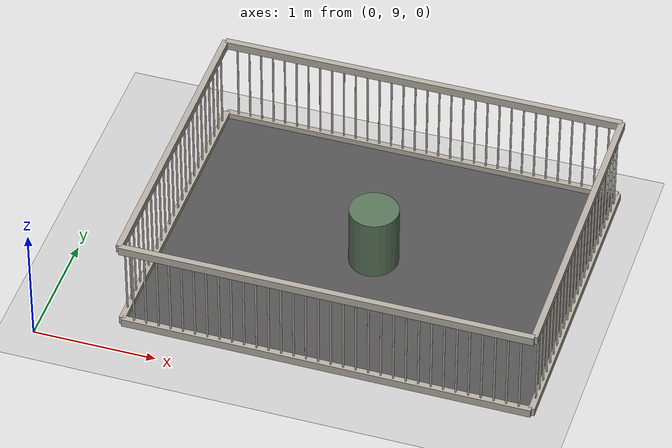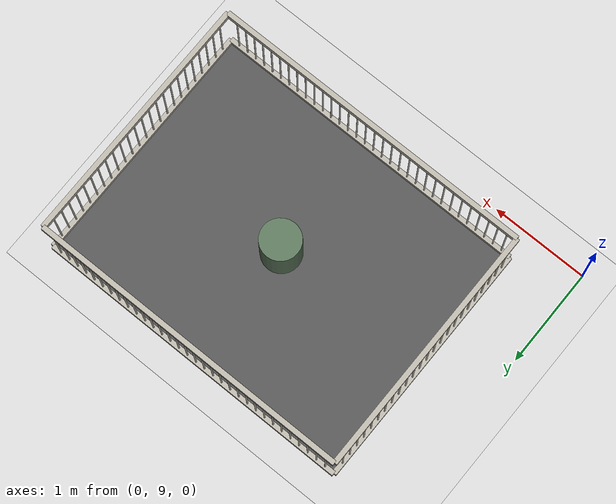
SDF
<sdf version="1.9">
 <world name="pig_pen_16units_world">
  <model name="ground_plane">
   <static>true</static>
   <link name="link">
    <collision name="collision">
     <geometry><plane><normal>0 0 1</normal><size>30 30</size></plane></geometry>
     <surface><friction><ode><mu>1.0</mu><mu2>1.0</mu2></ode></friction></surface>
    </collision>
    <visual name="visual">
     <geometry><plane><normal>0 0 1</normal><size>30 30</size></plane></geometry>
     <material>
      <ambient>0.8 0.8 0.8 1</ambient>
      <diffuse>0.8 0.8 0.8 1</diffuse>
      <specular>0.2 0.2 0.2 1</specular>
     </material>
    </visual>
   </link>
  </model>
  <model name="pen15">
   <pose>2.275 10.565 0 0 0 0</pose>
   <static>true</static>
   <link name="floor">
    <pose>0 0 0.01 0 0 0</pose>
    <collision name="collision"><geometry><box><size>3.30 2.55 0.02</size></box></geometry></collision>
    <visual name="visual">
     <geometry><box><size>3.30 2.55 0.02</size></box></geometry>
     <material>
      <ambient>0.25 0.25 0.25 1</ambient>
      <diffuse>0.32 0.32 0.32 1</diffuse>
      <specular>0.05 0.05 0.05 1</specular>
     </material>
    </visual>
   </link>
   <link name="left_wall">
    <pose>0 1.275 0.415 0 0 0</pose>
    <collision name="top_rail_col">
     <pose>0 0 0.38 0 0 0</pose>
     <geometry><box><size>3.30 0.05 0.07</size></box></geometry>
    </collision>
    <visual name="top_rail_vis">
     <pose>0 0 0.38 0 0 0</pose>
     <geometry><box><size>3.30 0.05 0.07</size></box></geometry>
     <material><ambient>0.70 0.68 0.64 1</ambient><diffuse>0.70 0.68 0.64 1</diffuse></material>
    </visual>
    <collision name="bottom_rail_col">
     <pose>0 0 -0.38 0 0 0</pose>
     <geometry><box><size>3.30 0.05 0.07</size></box></geometry>
    </collision>
    <visual name="bottom_rail_vis">
     <pose>0 0 -0.38 0 0 0</pose>
     <geometry><box><size>3.30 0.05 0.07</size></box></geometry>
     <material><ambient>0.70 0.68 0.64 1</ambient><diffuse>0.70 0.68 0.64 1</diffuse></material>
    </visual>
    <collision name="bar_01_col">
     <pose>-1.55 0 0 0 0 0</pose>
     <geometry><cylinder><radius>0.0075</radius><length>0.69</length></cylinder></geometry>
    </collision>
    <visual name="bar_01_vis">
     <pose>-1.55 0 0 0 0 0</pose>
     <geometry><cylinder><radius>0.0075</radius><length>0.69</length></cylinder></geometry>
     <material><ambient>0.70 0.68 0.64 1</ambient><diffuse>0.70 0.68 0.64 1</diffuse></material>
    </visual>
    <collision name="bar_02_col">
     <pose>-1.45 0 0 0 0 0</pose>
     <geometry><cylinder><radius>0.0075</radius><length>0.69</length></cylinder></geometry>
    </collision>
    <visual name="bar_02_vis">
     <pose>-1.45 0 0 0 0 0</pose>
     <geometry><cylinder><radius>0.0075</radius><length>0.69</length></cylinder></geometry>
     <material><ambient>0.70 0.68 0.64 1</ambient><diffuse>0.70 0.68 0.64 1</diffuse></material>
    </visual>
    <collision name="bar_03_col">
     <pose>-1.35 0 0 0 0 0</pose>
     <geometry><cylinder><radius>0.0075</radius><length>0.69</length></cylinder></geometry>
    </collision>
    <visual name="bar_03_vis">
     <pose>-1.35 0 0 0 0 0</pose>
     <geometry><cylinder><radius>0.0075</radius><length>0.69</length></cylinder></geometry>
     <material><ambient>0.70 0.68 0.64 1</ambient><diffuse>0.70 0.68 0.64 1</diffuse></material>
    </visual>
    <collision name="bar_04_col">
     <pose>-1.25 0 0 0 0 0</pose>
     <geometry><cylinder><radius>0.0075</radius><length>0.69</length></cylinder></geometry>
    </collision>
    <visual name="bar_04_vis">
     <pose>-1.25 0 0 0 0 0</pose>
     <geometry><cylinder><radius>0.0075</radius><length>0.69</length></cylinder></geometry>
     <material><ambient>0.70 0.68 0.64 1</ambient><diffuse>0.70 0.68 0.64 1</diffuse></material>
    </visual>
    <collision name="bar_05_col">
     <pose>-1.15 0 0 0 0 0</pose>
     <geometry><cylinder><radius>0.0075</radius><length>0.69</length></cylinder></geometry>
    </collision>
    <visual name="bar_05_vis">
     <pose>-1.15 0 0 0 0 0</pose>
     <geometry><cylinder><radius>0.0075</radius><length>0.69</length></cylinder></geometry>
     <material><ambient>0.70 0.68 0.64 1</ambient><diffuse>0.70 0.68 0.64 1</diffuse></material>
    </visual>
    <collision name="bar_06_col">
     <pose>-1.05 0 0 0 0 0</pose>
     <geometry><cylinder><radius>0.0075</radius><length>0.69</length></cylinder></geometry>
    </collision>
    <visual name="bar_06_vis">
     <pose>-1.05 0 0 0 0 0</pose>
     <geometry><cylinder><radius>0.0075</radius><length>0.69</length></cylinder></geometry>
     <material><ambient>0.70 0.68 0.64 1</ambient><diffuse>0.70 0.68 0.64 1</diffuse></material>
    </visual>
    <collision name="bar_07_col">
     <pose>-0.95 0 0 0 0 0</pose>
     <geometry><cylinder><radius>0.0075</radius><length>0.69</length></cylinder></geometry>
    </collision>
    <visual name="bar_07_vis">
     <pose>-0.95 0 0 0 0 0</pose>
     <geometry><cylinder><radius>0.0075</radius><length>0.69</length></cylinder></geometry>
     <material><ambient>0.70 0.68 0.64 1</ambient><diffuse>0.70 0.68 0.64 1</diffuse></material>
    </visual>
    <collision name="bar_08_col">
     <pose>-0.85 0 0 0 0 0</pose>
     <geometry><cylinder><radius>0.0075</radius><length>0.69</length></cylinder></geometry>
    </collision>
    <visual name="bar_08_vis">
     <pose>-0.85 0 0 0 0 0</pose>
     <geometry><cylinder><radius>0.0075</radius><length>0.69</length></cylinder></geometry>
     <material><ambient>0.70 0.68 0.64 1</ambient><diffuse>0.70 0.68 0.64 1</diffuse></material>
    </visual>
    <collision name="bar_09_col">
     <pose>-0.75 0 0 0 0 0</pose>
     <geometry><cylinder><radius>0.0075</radius><length>0.69</length></cylinder></geometry>
    </collision>
    <visual name="bar_09_vis">
     <pose>-0.75 0 0 0 0 0</pose>
     <geometry><cylinder><radius>0.0075</radius><length>0.69</length></cylinder></geometry>
     <material><ambient>0.70 0.68 0.64 1</ambient><diffuse>0.70 0.68 0.64 1</diffuse></material>
    </visual>
    <collision name="bar_10_col">
     <pose>-0.65 0 0 0 0 0</pose>
     <geometry><cylinder><radius>0.0075</radius><length>0.69</length></cylinder></geometry>
    </collision>
    <visual name="bar_10_vis">
     <pose>-0.65 0 0 0 0 0</pose>
     <geometry><cylinder><radius>0.0075</radius><length>0.69</length></cylinder></geometry>
     <material><ambient>0.70 0.68 0.64 1</ambient><diffuse>0.70 0.68 0.64 1</diffuse></material>
    </visual>
    <collision name="bar_11_col">
     <pose>-0.55 0 0 0 0 0</pose>
     <geometry><cylinder><radius>0.0075</radius><length>0.69</length></cylinder></geometry>
    </collision>
    <visual name="bar_11_vis">
     <pose>-0.55 0 0 0 0 0</pose>
     <geometry><cylinder><radius>0.0075</radius><length>0.69</length></cylinder></geometry>
     <material><ambient>0.70 0.68 0.64 1</ambient><diffuse>0.70 0.68 0.64 1</diffuse></material>
    </visual>
    <collision name="bar_12_col">
     <pose>-0.45 0 0 0 0 0</pose>
     <geometry><cylinder><radius>0.0075</radius><length>0.69</length></cylinder></geometry>
    </collision>
    <visual name="bar_12_vis">
     <pose>-0.45 0 0 0 0 0</pose>
     <geometry><cylinder><radius>0.0075</radius><length>0.69</length></cylinder></geometry>
     <material><ambient>0.70 0.68 0.64 1</ambient><diffuse>0.70 0.68 0.64 1</diffuse></material>
    </visual>
    <collision name="bar_13_col">
     <pose>-0.35 0 0 0 0 0</pose>
     <geometry><cylinder><radius>0.0075</radius><length>0.69</length></cylinder></geometry>
    </collision>
    <visual name="bar_13_vis">
     <pose>-0.35 0 0 0 0 0</pose>
     <geometry><cylinder><radius>0.0075</radius><length>0.69</length></cylinder></geometry>
     <material><ambient>0.70 0.68 0.64 1</ambient><diffuse>0.70 0.68 0.64 1</diffuse></material>
    </visual>
    <collision name="bar_14_col">
     <pose>-0.25 0 0 0 0 0</pose>
     <geometry><cylinder><radius>0.0075</radius><length>0.69</length></cylinder></geometry>
    </collision>
    <visual name="bar_14_vis">
     <pose>-0.25 0 0 0 0 0</pose>
     <geometry><cylinder><radius>0.0075</radius><length>0.69</length></cylinder></geometry>
     <material><ambient>0.70 0.68 0.64 1</ambient><diffuse>0.70 0.68 0.64 1</diffuse></material>
    </visual>
    <collision name="bar_15_col">
     <pose>-0.15 0 0 0 0 0</pose>
     <geometry><cylinder><radius>0.0075</radius><length>0.69</length></cylinder></geometry>
    </collision>
    <visual name="bar_15_vis">
     <pose>-0.15 0 0 0 0 0</pose>
     <geometry><cylinder><radius>0.0075</radius><length>0.69</length></cylinder></geometry>
     <material><ambient>0.70 0.68 0.64 1</ambient><diffuse>0.70 0.68 0.64 1</diffuse></material>
    </visual>
    <collision name="bar_16_col">
     <pose>-0.05 0 0 0 0 0</pose>
     <geometry><cylinder><radius>0.0075</radius><length>0.69</length></cylinder></geometry>
    </collision>
    <visual name="bar_16_vis">
     <pose>-0.05 0 0 0 0 0</pose>
     <geometry><cylinder><radius>0.0075</radius><length>0.69</length></cylinder></geometry>
     <material><ambient>0.70 0.68 0.64 1</ambient><diffuse>0.70 0.68 0.64 1</diffuse></material>
    </visual>
    <collision name="bar_17_col">
     <pose>0.05 0 0 0 0 0</pose>
     <geometry><cylinder><radius>0.0075</radius><length>0.69</length></cylinder></geometry>
    </collision>
    <visual name="bar_17_vis">
     <pose>0.05 0 0 0 0 0</pose>
     <geometry><cylinder><radius>0.0075</radius><length>0.69</length></cylinder></geometry>
     <material><ambient>0.70 0.68 0.64 1</ambient><diffuse>0.70 0.68 0.64 1</diffuse></material>
    </visual>
    <collision name="bar_18_col">
     <pose>0.15 0 0 0 0 0</pose>
     <geometry><cylinder><radius>0.0075</radius><length>0.69</length></cylinder></geometry>
    </collision>
    <visual name="bar_18_vis">
     <pose>0.15 0 0 0 0 0</pose>
     <geometry><cylinder><radius>0.0075</radius><length>0.69</length></cylinder></geometry>
     <material><ambient>0.70 0.68 0.64 1</ambient><diffuse>0.70 0.68 0.64 1</diffuse></material>
    </visual>
    <collision name="bar_19_col">
     <pose>0.25 0 0 0 0 0</pose>
     <geometry><cylinder><radius>0.0075</radius><length>0.69</length></cylinder></geometry>
    </collision>
    <visual name="bar_19_vis">
     <pose>0.25 0 0 0 0 0</pose>
     <geometry><cylinder><radius>0.0075</radius><length>0.69</length></cylinder></geometry>
     <material><ambient>0.70 0.68 0.64 1</ambient><diffuse>0.70 0.68 0.64 1</diffuse></material>
    </visual>
    <collision name="bar_20_col">
     <pose>0.35 0 0 0 0 0</pose>
     <geometry><cylinder><radius>0.0075</radius><length>0.69</length></cylinder></geometry>
    </collision>
    <visual name="bar_20_vis">
     <pose>0.35 0 0 0 0 0</pose>
     <geometry><cylinder><radius>0.0075</radius><length>0.69</length></cylinder></geometry>
     <material><ambient>0.70 0.68 0.64 1</ambient><diffuse>0.70 0.68 0.64 1</diffuse></material>
    </visual>
    <collision name="bar_21_col">
     <pose>0.45 0 0 0 0 0</pose>
     <geometry><cylinder><radius>0.0075</radius><length>0.69</length></cylinder></geometry>
    </collision>
    <visual name="bar_21_vis">
     <pose>0.45 0 0 0 0 0</pose>
     <geometry><cylinder><radius>0.0075</radius><length>0.69</length></cylinder></geometry>
     <material><ambient>0.70 0.68 0.64 1</ambient><diffuse>0.70 0.68 0.64 1</diffuse></material>
    </visual>
    <collision name="bar_22_col">
     <pose>0.55 0 0 0 0 0</pose>
     <geometry><cylinder><radius>0.0075</radius><length>0.69</length></cylinder></geometry>
    </collision>
    <visual name="bar_22_vis">
     <pose>0.55 0 0 0 0 0</pose>
     <geometry><cylinder><radius>0.0075</radius><length>0.69</length></cylinder></geometry>
     <material><ambient>0.70 0.68 0.64 1</ambient><diffuse>0.70 0.68 0.64 1</diffuse></material>
    </visual>
    <collision name="bar_23_col">
     <pose>0.65 0 0 0 0 0</pose>
     <geometry><cylinder><radius>0.0075</radius><length>0.69</length></cylinder></geometry>
    </collision>
    <visual name="bar_23_vis">
     <pose>0.65 0 0 0 0 0</pose>
     <geometry><cylinder><radius>0.0075</radius><length>0.69</length></cylinder></geometry>
     <material><ambient>0.70 0.68 0.64 1</ambient><diffuse>0.70 0.68 0.64 1</diffuse></material>
    </visual>
    <collision name="bar_24_col">
     <pose>0.75 0 0 0 0 0</pose>
     <geometry><cylinder><radius>0.0075</radius><length>0.69</length></cylinder></geometry>
    </collision>
    <visual name="bar_24_vis">
     <pose>0.75 0 0 0 0 0</pose>
     <geometry><cylinder><radius>0.0075</radius><length>0.69</length></cylinder></geometry>
     <material><ambient>0.70 0.68 0.64 1</ambient><diffuse>0.70 0.68 0.64 1</diffuse></material>
    </visual>
    <collision name="bar_25_col">
     <pose>0.85 0 0 0 0 0</pose>
     <geometry><cylinder><radius>0.0075</radius><length>0.69</length></cylinder></geometry>
    </collision>
    <visual name="bar_25_vis">
     <pose>0.85 0 0 0 0 0</pose>
     <geometry><cylinder><radius>0.0075</radius><length>0.69</length></cylinder></geometry>
     <material><ambient>0.70 0.68 0.64 1</ambient><diffuse>0.70 0.68 0.64 1</diffuse></material>
    </visual>
    <collision name="bar_26_col">
     <pose>0.95 0 0 0 0 0</pose>
     <geometry><cylinder><radius>0.0075</radius><length>0.69</length></cylinder></geometry>
    </collision>
    <visual name="bar_26_vis">
     <pose>0.95 0 0 0 0 0</pose>
     <geometry><cylinder><radius>0.0075</radius><length>0.69</length></cylinder></geometry>
     <material><ambient>0.70 0.68 0.64 1</ambient><diffuse>0.70 0.68 0.64 1</diffuse></material>
    </visual>
    <collision name="bar_27_col">
     <pose>1.05 0 0 0 0 0</pose>
     <geometry><cylinder><radius>0.0075</radius><length>0.69</length></cylinder></geometry>
    </collision>
    <visual name="bar_27_vis">
     <pose>1.05 0 0 0 0 0</pose>
     <geometry><cylinder><radius>0.0075</radius><length>0.69</length></cylinder></geometry>
     <material><ambient>0.70 0.68 0.64 1</ambient><diffuse>0.70 0.68 0.64 1</diffuse></material>
    </visual>
    <collision name="bar_28_col">
     <pose>1.15 0 0 0 0 0</pose>
     <geometry><cylinder><radius>0.0075</radius><length>0.69</length></cylinder></geometry>
    </collision>
    <visual name="bar_28_vis">
     <pose>1.15 0 0 0 0 0</pose>
     <geometry><cylinder><radius>0.0075</radius><length>0.69</length></cylinder></geometry>
     <material><ambient>0.70 0.68 0.64 1</ambient><diffuse>0.70 0.68 0.64 1</diffuse></material>
    </visual>
    <collision name="bar_29_col">
     <pose>1.25 0 0 0 0 0</pose>
     <geometry><cylinder><radius>0.0075</radius><length>0.69</length></cylinder></geometry>
    </collision>
    <visual name="bar_29_vis">
     <pose>1.25 0 0 0 0 0</pose>
     <geometry><cylinder><radius>0.0075</radius><length>0.69</length></cylinder></geometry>
     <material><ambient>0.70 0.68 0.64 1</ambient><diffuse>0.70 0.68 0.64 1</diffuse></material>
    </visual>
    <collision name="bar_30_col">
     <pose>1.35 0 0 0 0 0</pose>
     <geometry><cylinder><radius>0.0075</radius><length>0.69</length></cylinder></geometry>
    </collision>
    <visual name="bar_30_vis">
     <pose>1.35 0 0 0 0 0</pose>
     <geometry><cylinder><radius>0.0075</radius><length>0.69</length></cylinder></geometry>
     <material><ambient>0.70 0.68 0.64 1</ambient><diffuse>0.70 0.68 0.64 1</diffuse></material>
    </visual>
    <collision name="bar_31_col">
     <pose>1.45 0 0 0 0 0</pose>
     <geometry><cylinder><radius>0.0075</radius><length>0.69</length></cylinder></geometry>
    </collision>
    <visual name="bar_31_vis">
     <pose>1.45 0 0 0 0 0</pose>
     <geometry><cylinder><radius>0.0075</radius><length>0.69</length></cylinder></geometry>
     <material><ambient>0.70 0.68 0.64 1</ambient><diffuse>0.70 0.68 0.64 1</diffuse></material>
    </visual>
    <collision name="bar_32_col">
     <pose>1.55 0 0 0 0 0</pose>
     <geometry><cylinder><radius>0.0075</radius><length>0.69</length></cylinder></geometry>
    </collision>
    <visual name="bar_32_vis">
     <pose>1.55 0 0 0 0 0</pose>
     <geometry><cylinder><radius>0.0075</radius><length>0.69</length></cylinder></geometry>
     <material><ambient>0.70 0.68 0.64 1</ambient><diffuse>0.70 0.68 0.64 1</diffuse></material>
    </visual>
   </link>
   <link name="right_wall">
    <pose>0 -1.275 0.415 0 0 0</pose>
    <collision name="top_rail_col">
     <pose>0 0 0.38 0 0 0</pose>
     <geometry><box><size>3.30 0.05 0.07</size></box></geometry>
    </collision>
    <visual name="top_rail_vis">
     <pose>0 0 0.38 0 0 0</pose>
     <geometry><box><size>3.30 0.05 0.07</size></box></geometry>
     <material><ambient>0.70 0.68 0.64 1</ambient><diffuse>0.70 0.68 0.64 1</diffuse></material>
    </visual>
    <collision name="bottom_rail_col">
     <pose>0 0 -0.38 0 0 0</pose>
     <geometry><box><size>3.30 0.05 0.07</size></box></geometry>
    </collision>
    <visual name="bottom_rail_vis">
     <pose>0 0 -0.38 0 0 0</pose>
     <geometry><box><size>3.30 0.05 0.07</size></box></geometry>
     <material><ambient>0.70 0.68 0.64 1</ambient><diffuse>0.70 0.68 0.64 1</diffuse></material>
    </visual>
    <collision name="bar_01_col">
     <pose>-1.55 0 0 0 0 0</pose>
     <geometry><cylinder><radius>0.0075</radius><length>0.69</length></cylinder></geometry>
    </collision>
    <visual name="bar_01_vis">
     <pose>-1.55 0 0 0 0 0</pose>
     <geometry><cylinder><radius>0.0075</radius><length>0.69</length></cylinder></geometry>
     <material><ambient>0.70 0.68 0.64 1</ambient><diffuse>0.70 0.68 0.64 1</diffuse></material>
    </visual>
    <collision name="bar_02_col">
     <pose>-1.45 0 0 0 0 0</pose>
     <geometry><cylinder><radius>0.0075</radius><length>0.69</length></cylinder></geometry>
    </collision>
    <visual name="bar_02_vis">
     <pose>-1.45 0 0 0 0 0</pose>
     <geometry><cylinder><radius>0.0075</radius><length>0.69</length></cylinder></geometry>
     <material><ambient>0.70 0.68 0.64 1</ambient><diffuse>0.70 0.68 0.64 1</diffuse></material>
    </visual>
    <collision name="bar_03_col">
     <pose>-1.35 0 0 0 0 0</pose>
     <geometry><cylinder><radius>0.0075</radius><length>0.69</length></cylinder></geometry>
    </collision>
    <visual name="bar_03_vis">
     <pose>-1.35 0 0 0 0 0</pose>
     <geometry><cylinder><radius>0.0075</radius><length>0.69</length></cylinder></geometry>
     <material><ambient>0.70 0.68 0.64 1</ambient><diffuse>0.70 0.68 0.64 1</diffuse></material>
    </visual>
    <collision name="bar_04_col">
     <pose>-1.25 0 0 0 0 0</pose>
     <geometry><cylinder><radius>0.0075</radius><length>0.69</length></cylinder></geometry>
    </collision>
    <visual name="bar_04_vis">
     <pose>-1.25 0 0 0 0 0</pose>
     <geometry><cylinder><radius>0.0075</radius><length>0.69</length></cylinder></geometry>
     <material><ambient>0.70 0.68 0.64 1</ambient><diffuse>0.70 0.68 0.64 1</diffuse></material>
    </visual>
    <collision name="bar_05_col">
     <pose>-1.15 0 0 0 0 0</pose>
     <geometry><cylinder><radius>0.0075</radius><length>0.69</length></cylinder></geometry>
    </collision>
    <visual name="bar_05_vis">
     <pose>-1.15 0 0 0 0 0</pose>
     <geometry><cylinder><radius>0.0075</radius><length>0.69</length></cylinder></geometry>
     <material><ambient>0.70 0.68 0.64 1</ambient><diffuse>0.70 0.68 0.64 1</diffuse></material>
    </visual>
    <collision name="bar_06_col">
     <pose>-1.05 0 0 0 0 0</pose>
     <geometry><cylinder><radius>0.0075</radius><length>0.69</length></cylinder></geometry>
    </collision>
    <visual name="bar_06_vis">
     <pose>-1.05 0 0 0 0 0</pose>
     <geometry><cylinder><radius>0.0075</radius><length>0.69</length></cylinder></geometry>
     <material><ambient>0.70 0.68 0.64 1</ambient><diffuse>0.70 0.68 0.64 1</diffuse></material>
    </visual>
    <collision name="bar_07_col">
     <pose>-0.95 0 0 0 0 0</pose>
     <geometry><cylinder><radius>0.0075</radius><length>0.69</length></cylinder></geometry>
    </collision>
    <visual name="bar_07_vis">
     <pose>-0.95 0 0 0 0 0</pose>
     <geometry><cylinder><radius>0.0075</radius><length>0.69</length></cylinder></geometry>
     <material><ambient>0.70 0.68 0.64 1</ambient><diffuse>0.70 0.68 0.64 1</diffuse></material>
    </visual>
    <collision name="bar_08_col">
     <pose>-0.85 0 0 0 0 0</pose>
     <geometry><cylinder><radius>0.0075</radius><length>0.69</length></cylinder></geometry>
    </collision>
    <visual name="bar_08_vis">
     <pose>-0.85 0 0 0 0 0</pose>
     <geometry><cylinder><radius>0.0075</radius><length>0.69</length></cylinder></geometry>
     <material><ambient>0.70 0.68 0.64 1</ambient><diffuse>0.70 0.68 0.64 1</diffuse></material>
    </visual>
    <collision name="bar_09_col">
     <pose>-0.75 0 0 0 0 0</pose>
     <geometry><cylinder><radius>0.0075</radius><length>0.69</length></cylinder></geometry>
    </collision>
    <visual name="bar_09_vis">
     <pose>-0.75 0 0 0 0 0</pose>
     <geometry><cylinder><radius>0.0075</radius><length>0.69</length></cylinder></geometry>
     <material><ambient>0.70 0.68 0.64 1</ambient><diffuse>0.70 0.68 0.64 1</diffuse></material>
    </visual>
    <collision name="bar_10_col">
     <pose>-0.65 0 0 0 0 0</pose>
     <geometry><cylinder><radius>0.0075</radius><length>0.69</length></cylinder></geometry>
    </collision>
    <visual name="bar_10_vis">
     <pose>-0.65 0 0 0 0 0</pose>
     <geometry><cylinder><radius>0.0075</radius><length>0.69</length></cylinder></geometry>
     <material><ambient>0.70 0.68 0.64 1</ambient><diffuse>0.70 0.68 0.64 1</diffuse></material>
    </visual>
    <collision name="bar_11_col">
     <pose>-0.55 0 0 0 0 0</pose>
     <geometry><cylinder><radius>0.0075</radius><length>0.69</length></cylinder></geometry>
    </collision>
    <visual name="bar_11_vis">
     <pose>-0.55 0 0 0 0 0</pose>
     <geometry><cylinder><radius>0.0075</radius><length>0.69</length></cylinder></geometry>
     <material><ambient>0.70 0.68 0.64 1</ambient><diffuse>0.70 0.68 0.64 1</diffuse></material>
    </visual>
    <collision name="bar_12_col">
     <pose>-0.45 0 0 0 0 0</pose>
     <geometry><cylinder><radius>0.0075</radius><length>0.69</length></cylinder></geometry>
    </collision>
    <visual name="bar_12_vis">
     <pose>-0.45 0 0 0 0 0</pose>
     <geometry><cylinder><radius>0.0075</radius><length>0.69</length></cylinder></geometry>
     <material><ambient>0.70 0.68 0.64 1</ambient><diffuse>0.70 0.68 0.64 1</diffuse></material>
    </visual>
    <collision name="bar_13_col">
     <pose>-0.35 0 0 0 0 0</pose>
     <geometry><cylinder><radius>0.0075</radius><length>0.69</length></cylinder></geometry>
    </collision>
    <visual name="bar_13_vis">
     <pose>-0.35 0 0 0 0 0</pose>
     <geometry><cylinder><radius>0.0075</radius><length>0.69</length></cylinder></geometry>
     <material><ambient>0.70 0.68 0.64 1</ambient><diffuse>0.70 0.68 0.64 1</diffuse></material>
    </visual>
    <collision name="bar_14_col">
     <pose>-0.25 0 0 0 0 0</pose>
     <geometry><cylinder><radius>0.0075</radius><length>0.69</length></cylinder></geometry>
    </collision>
    <visual name="bar_14_vis">
     <pose>-0.25 0 0 0 0 0</pose>
     <geometry><cylinder><radius>0.0075</radius><length>0.69</length></cylinder></geometry>
     <material><ambient>0.70 0.68 0.64 1</ambient><diffuse>0.70 0.68 0.64 1</diffuse></material>
    </visual>
    <collision name="bar_15_col">
     <pose>-0.15 0 0 0 0 0</pose>
     <geometry><cylinder><radius>0.0075</radius><length>0.69</length></cylinder></geometry>
    </collision>
    <visual name="bar_15_vis">
     <pose>-0.15 0 0 0 0 0</pose>
     <geometry><cylinder><radius>0.0075</radius><length>0.69</length></cylinder></geometry>
     <material><ambient>0.70 0.68 0.64 1</ambient><diffuse>0.70 0.68 0.64 1</diffuse></material>
    </visual>
    <collision name="bar_16_col">
     <pose>-0.05 0 0 0 0 0</pose>
     <geometry><cylinder><radius>0.0075</radius><length>0.69</length></cylinder></geometry>
    </collision>
    <visual name="bar_16_vis">
     <pose>-0.05 0 0 0 0 0</pose>
     <geometry><cylinder><radius>0.0075</radius><length>0.69</length></cylinder></geometry>
     <material><ambient>0.70 0.68 0.64 1</ambient><diffuse>0.70 0.68 0.64 1</diffuse></material>
    </visual>
    <collision name="bar_17_col">
     <pose>0.05 0 0 0 0 0</pose>
     <geometry><cylinder><radius>0.0075</radius><length>0.69</length></cylinder></geometry>
    </collision>
    <visual name="bar_17_vis">
     <pose>0.05 0 0 0 0 0</pose>
     <geometry><cylinder><radius>0.0075</radius><length>0.69</length></cylinder></geometry>
     <material><ambient>0.70 0.68 0.64 1</ambient><diffuse>0.70 0.68 0.64 1</diffuse></material>
    </visual>
    <collision name="bar_18_col">
     <pose>0.15 0 0 0 0 0</pose>
     <geometry><cylinder><radius>0.0075</radius><length>0.69</length></cylinder></geometry>
    </collision>
    <visual name="bar_18_vis">
     <pose>0.15 0 0 0 0 0</pose>
     <geometry><cylinder><radius>0.0075</radius><length>0.69</length></cylinder></geometry>
     <material><ambient>0.70 0.68 0.64 1</ambient><diffuse>0.70 0.68 0.64 1</diffuse></material>
    </visual>
    <collision name="bar_19_col">
     <pose>0.25 0 0 0 0 0</pose>
     <geometry><cylinder><radius>0.0075</radius><length>0.69</length></cylinder></geometry>
    </collision>
    <visual name="bar_19_vis">
     <pose>0.25 0 0 0 0 0</pose>
     <geometry><cylinder><radius>0.0075</radius><length>0.69</length></cylinder></geometry>
     <material><ambient>0.70 0.68 0.64 1</ambient><diffuse>0.70 0.68 0.64 1</diffuse></material>
    </visual>
    <collision name="bar_20_col">
     <pose>0.35 0 0 0 0 0</pose>
     <geometry><cylinder><radius>0.0075</radius><length>0.69</length></cylinder></geometry>
    </collision>
    <visual name="bar_20_vis">
     <pose>0.35 0 0 0 0 0</pose>
     <geometry><cylinder><radius>0.0075</radius><length>0.69</length></cylinder></geometry>
     <material><ambient>0.70 0.68 0.64 1</ambient><diffuse>0.70 0.68 0.64 1</diffuse></material>
    </visual>
    <collision name="bar_21_col">
     <pose>0.45 0 0 0 0 0</pose>
     <geometry><cylinder><radius>0.0075</radius><length>0.69</length></cylinder></geometry>
    </collision>
    <visual name="bar_21_vis">
     <pose>0.45 0 0 0 0 0</pose>
     <geometry><cylinder><radius>0.0075</radius><length>0.69</length></cylinder></geometry>
     <material><ambient>0.70 0.68 0.64 1</ambient><diffuse>0.70 0.68 0.64 1</diffuse></material>
    </visual>
    <collision name="bar_22_col">
     <pose>0.55 0 0 0 0 0</pose>
     <geometry><cylinder><radius>0.0075</radius><length>0.69</length></cylinder></geometry>
    </collision>
    <visual name="bar_22_vis">
     <pose>0.55 0 0 0 0 0</pose>
     <geometry><cylinder><radius>0.0075</radius><length>0.69</length></cylinder></geometry>
     <material><ambient>0.70 0.68 0.64 1</ambient><diffuse>0.70 0.68 0.64 1</diffuse></material>
    </visual>
    <collision name="bar_23_col">
     <pose>0.65 0 0 0 0 0</pose>
     <geometry><cylinder><radius>0.0075</radius><length>0.69</length></cylinder></geometry>
    </collision>
    <visual name="bar_23_vis">
     <pose>0.65 0 0 0 0 0</pose>
     <geometry><cylinder><radius>0.0075</radius><length>0.69</length></cylinder></geometry>
     <material><ambient>0.70 0.68 0.64 1</ambient><diffuse>0.70 0.68 0.64 1</diffuse></material>
    </visual>
    <collision name="bar_24_col">
     <pose>0.75 0 0 0 0 0</pose>
     <geometry><cylinder><radius>0.0075</radius><length>0.69</length></cylinder></geometry>
    </collision>
    <visual name="bar_24_vis">
     <pose>0.75 0 0 0 0 0</pose>
     <geometry><cylinder><radius>0.0075</radius><length>0.69</length></cylinder></geometry>
     <material><ambient>0.70 0.68 0.64 1</ambient><diffuse>0.70 0.68 0.64 1</diffuse></material>
    </visual>
    <collision name="bar_25_col">
     <pose>0.85 0 0 0 0 0</pose>
     <geometry><cylinder><radius>0.0075</radius><length>0.69</length></cylinder></geometry>
    </collision>
    <visual name="bar_25_vis">
     <pose>0.85 0 0 0 0 0</pose>
     <geometry><cylinder><radius>0.0075</radius><length>0.69</length></cylinder></geometry>
     <material><ambient>0.70 0.68 0.64 1</ambient><diffuse>0.70 0.68 0.64 1</diffuse></material>
    </visual>
    <collision name="bar_26_col">
     <pose>0.95 0 0 0 0 0</pose>
     <geometry><cylinder><radius>0.0075</radius><length>0.69</length></cylinder></geometry>
    </collision>
    <visual name="bar_26_vis">
     <pose>0.95 0 0 0 0 0</pose>
     <geometry><cylinder><radius>0.0075</radius><length>0.69</length></cylinder></geometry>
     <material><ambient>0.70 0.68 0.64 1</ambient><diffuse>0.70 0.68 0.64 1</diffuse></material>
    </visual>
    <collision name="bar_27_col">
     <pose>1.05 0 0 0 0 0</pose>
     <geometry><cylinder><radius>0.0075</radius><length>0.69</length></cylinder></geometry>
    </collision>
    <visual name="bar_27_vis">
     <pose>1.05 0 0 0 0 0</pose>
     <geometry><cylinder><radius>0.0075</radius><length>0.69</length></cylinder></geometry>
     <material><ambient>0.70 0.68 0.64 1</ambient><diffuse>0.70 0.68 0.64 1</diffuse></material>
    </visual>
    <collision name="bar_28_col">
     <pose>1.15 0 0 0 0 0</pose>
     <geometry><cylinder><radius>0.0075</radius><length>0.69</length></cylinder></geometry>
    </collision>
    <visual name="bar_28_vis">
     <pose>1.15 0 0 0 0 0</pose>
     <geometry><cylinder><radius>0.0075</radius><length>0.69</length></cylinder></geometry>
     <material><ambient>0.70 0.68 0.64 1</ambient><diffuse>0.70 0.68 0.64 1</diffuse></material>
    </visual>
    <collision name="bar_29_col">
     <pose>1.25 0 0 0 0 0</pose>
     <geometry><cylinder><radius>0.0075</radius><length>0.69</length></cylinder></geometry>
    </collision>
    <visual name="bar_29_vis">
     <pose>1.25 0 0 0 0 0</pose>
     <geometry><cylinder><radius>0.0075</radius><length>0.69</length></cylinder></geometry>
     <material><ambient>0.70 0.68 0.64 1</ambient><diffuse>0.70 0.68 0.64 1</diffuse></material>
    </visual>
    <collision name="bar_30_col">
     <pose>1.35 0 0 0 0 0</pose>
     <geometry><cylinder><radius>0.0075</radius><length>0.69</length></cylinder></geometry>
    </collision>
    <visual name="bar_30_vis">
     <pose>1.35 0 0 0 0 0</pose>
     <geometry><cylinder><radius>0.0075</radius><length>0.69</length></cylinder></geometry>
     <material><ambient>0.70 0.68 0.64 1</ambient><diffuse>0.70 0.68 0.64 1</diffuse></material>
    </visual>
    <collision name="bar_31_col">
     <pose>1.45 0 0 0 0 0</pose>
     <geometry><cylinder><radius>0.0075</radius><length>0.69</length></cylinder></geometry>
    </collision>
    <visual name="bar_31_vis">
     <pose>1.45 0 0 0 0 0</pose>
     <geometry><cylinder><radius>0.0075</radius><length>0.69</length></cylinder></geometry>
     <material><ambient>0.70 0.68 0.64 1</ambient><diffuse>0.70 0.68 0.64 1</diffuse></material>
    </visual>
    <collision name="bar_32_col">
     <pose>1.55 0 0 0 0 0</pose>
     <geometry><cylinder><radius>0.0075</radius><length>0.69</length></cylinder></geometry>
    </collision>
    <visual name="bar_32_vis">
     <pose>1.55 0 0 0 0 0</pose>
     <geometry><cylinder><radius>0.0075</radius><length>0.69</length></cylinder></geometry>
     <material><ambient>0.70 0.68 0.64 1</ambient><diffuse>0.70 0.68 0.64 1</diffuse></material>
    </visual>
   </link>
   <link name="back_wall">
    <pose>1.65 0 0.415 0 0 0</pose>
    <collision name="top_rail_col">
     <pose>0 0 0.38 0 0 0</pose>
     <geometry><box><size>0.05 2.55 0.07</size></box></geometry>
    </collision>
    <visual name="top_rail_vis">
     <pose>0 0 0.38 0 0 0</pose>
     <geometry><box><size>0.05 2.55 0.07</size></box></geometry>
     <material><ambient>0.70 0.68 0.64 1</ambient><diffuse>0.70 0.68 0.64 1</diffuse></material>
    </visual>
    <collision name="bottom_rail_col">
     <pose>0 0 -0.38 0 0 0</pose>
     <geometry><box><size>0.05 2.55 0.07</size></box></geometry>
    </collision>
    <visual name="bottom_rail_vis">
     <pose>0 0 -0.38 0 0 0</pose>
     <geometry><box><size>0.05 2.55 0.07</size></box></geometry>
     <material><ambient>0.70 0.68 0.64 1</ambient><diffuse>0.70 0.68 0.64 1</diffuse></material>
    </visual>
    <collision name="bar_01_col">
     <pose>0 -1.15 0 0 0 0</pose>
     <geometry><cylinder><radius>0.0075</radius><length>0.69</length></cylinder></geometry>
    </collision>
    <visual name="bar_01_vis">
     <pose>0 -1.15 0 0 0 0</pose>
     <geometry><cylinder><radius>0.0075</radius><length>0.69</length></cylinder></geometry>
     <material><ambient>0.70 0.68 0.64 1</ambient><diffuse>0.70 0.68 0.64 1</diffuse></material>
    </visual>
    <collision name="bar_02_col">
     <pose>0 -1.05 0 0 0 0</pose>
     <geometry><cylinder><radius>0.0075</radius><length>0.69</length></cylinder></geometry>
    </collision>
    <visual name="bar_02_vis">
     <pose>0 -1.05 0 0 0 0</pose>
     <geometry><cylinder><radius>0.0075</radius><length>0.69</length></cylinder></geometry>
     <material><ambient>0.70 0.68 0.64 1</ambient><diffuse>0.70 0.68 0.64 1</diffuse></material>
    </visual>
    <collision name="bar_03_col">
     <pose>0 -0.95 0 0 0 0</pose>
     <geometry><cylinder><radius>0.0075</radius><length>0.69</length></cylinder></geometry>
    </collision>
    <visual name="bar_03_vis">
     <pose>0 -0.95 0 0 0 0</pose>
     <geometry><cylinder><radius>0.0075</radius><length>0.69</length></cylinder></geometry>
     <material><ambient>0.70 0.68 0.64 1</ambient><diffuse>0.70 0.68 0.64 1</diffuse></material>
    </visual>
    <collision name="bar_04_col">
     <pose>0 -0.85 0 0 0 0</pose>
     <geometry><cylinder><radius>0.0075</radius><length>0.69</length></cylinder></geometry>
    </collision>
    <visual name="bar_04_vis">
     <pose>0 -0.85 0 0 0 0</pose>
     <geometry><cylinder><radius>0.0075</radius><length>0.69</length></cylinder></geometry>
     <material><ambient>0.70 0.68 0.64 1</ambient><diffuse>0.70 0.68 0.64 1</diffuse></material>
    </visual>
    <collision name="bar_05_col">
     <pose>0 -0.75 0 0 0 0</pose>
     <geometry><cylinder><radius>0.0075</radius><length>0.69</length></cylinder></geometry>
    </collision>
    <visual name="bar_05_vis">
     <pose>0 -0.75 0 0 0 0</pose>
     <geometry><cylinder><radius>0.0075</radius><length>0.69</length></cylinder></geometry>
     <material><ambient>0.70 0.68 0.64 1</ambient><diffuse>0.70 0.68 0.64 1</diffuse></material>
    </visual>
    <collision name="bar_06_col">
     <pose>0 -0.65 0 0 0 0</pose>
     <geometry><cylinder><radius>0.0075</radius><length>0.69</length></cylinder></geometry>
    </collision>
    <visual name="bar_06_vis">
     <pose>0 -0.65 0 0 0 0</pose>
     <geometry><cylinder><radius>0.0075</radius><length>0.69</length></cylinder></geometry>
     <material><ambient>0.70 0.68 0.64 1</ambient><diffuse>0.70 0.68 0.64 1</diffuse></material>
    </visual>
    <collision name="bar_07_col">
     <pose>0 -0.55 0 0 0 0</pose>
     <geometry><cylinder><radius>0.0075</radius><length>0.69</length></cylinder></geometry>
    </collision>
    <visual name="bar_07_vis">
     <pose>0 -0.55 0 0 0 0</pose>
     <geometry><cylinder><radius>0.0075</radius><length>0.69</length></cylinder></geometry>
     <material><ambient>0.70 0.68 0.64 1</ambient><diffuse>0.70 0.68 0.64 1</diffuse></material>
    </visual>
    <collision name="bar_08_col">
     <pose>0 -0.45 0 0 0 0</pose>
     <geometry><cylinder><radius>0.0075</radius><length>0.69</length></cylinder></geometry>
    </collision>
    <visual name="bar_08_vis">
     <pose>0 -0.45 0 0 0 0</pose>
     <geometry><cylinder><radius>0.0075</radius><length>0.69</length></cylinder></geometry>
     <material><ambient>0.70 0.68 0.64 1</ambient><diffuse>0.70 0.68 0.64 1</diffuse></material>
    </visual>
    <collision name="bar_09_col">
     <pose>0 -0.35 0 0 0 0</pose>
     <geometry><cylinder><radius>0.0075</radius><length>0.69</length></cylinder></geometry>
    </collision>
    <visual name="bar_09_vis">
     <pose>0 -0.35 0 0 0 0</pose>
     <geometry><cylinder><radius>0.0075</radius><length>0.69</length></cylinder></geometry>
     <material><ambient>0.70 0.68 0.64 1</ambient><diffuse>0.70 0.68 0.64 1</diffuse></material>
    </visual>
    <collision name="bar_10_col">
     <pose>0 -0.25 0 0 0 0</pose>
     <geometry><cylinder><radius>0.0075</radius><length>0.69</length></cylinder></geometry>
    </collision>
    <visual name="bar_10_vis">
     <pose>0 -0.25 0 0 0 0</pose>
     <geometry><cylinder><radius>0.0075</radius><length>0.69</length></cylinder></geometry>
     <material><ambient>0.70 0.68 0.64 1</ambient><diffuse>0.70 0.68 0.64 1</diffuse></material>
    </visual>
    <collision name="bar_11_col">
     <pose>0 -0.15 0 0 0 0</pose>
     <geometry><cylinder><radius>0.0075</radius><length>0.69</length></cylinder></geometry>
    </collision>
    <visual name="bar_11_vis">
     <pose>0 -0.15 0 0 0 0</pose>
     <geometry><cylinder><radius>0.0075</radius><length>0.69</length></cylinder></geometry>
     <material><ambient>0.70 0.68 0.64 1</ambient><diffuse>0.70 0.68 0.64 1</diffuse></material>
    </visual>
    <collision name="bar_12_col">
     <pose>0 -0.05 0 0 0 0</pose>
     <geometry><cylinder><radius>0.0075</radius><length>0.69</length></cylinder></geometry>
    </collision>
    <visual name="bar_12_vis">
     <pose>0 -0.05 0 0 0 0</pose>
     <geometry><cylinder><radius>0.0075</radius><length>0.69</length></cylinder></geometry>
     <material><ambient>0.70 0.68 0.64 1</ambient><diffuse>0.70 0.68 0.64 1</diffuse></material>
    </visual>
    <collision name="bar_13_col">
     <pose>0 0.05 0 0 0 0</pose>
     <geometry><cylinder><radius>0.0075</radius><length>0.69</length></cylinder></geometry>
    </collision>
    <visual name="bar_13_vis">
     <pose>0 0.05 0 0 0 0</pose>
     <geometry><cylinder><radius>0.0075</radius><length>0.69</length></cylinder></geometry>
     <material><ambient>0.70 0.68 0.64 1</ambient><diffuse>0.70 0.68 0.64 1</diffuse></material>
    </visual>
    <collision name="bar_14_col">
     <pose>0 0.15 0 0 0 0</pose>
     <geometry><cylinder><radius>0.0075</radius><length>0.69</length></cylinder></geometry>
    </collision>
    <visual name="bar_14_vis">
     <pose>0 0.15 0 0 0 0</pose>
     <geometry><cylinder><radius>0.0075</radius><length>0.69</length></cylinder></geometry>
     <material><ambient>0.70 0.68 0.64 1</ambient><diffuse>0.70 0.68 0.64 1</diffuse></material>
    </visual>
    <collision name="bar_15_col">
     <pose>0 0.25 0 0 0 0</pose>
     <geometry><cylinder><radius>0.0075</radius><length>0.69</length></cylinder></geometry>
    </collision>
    <visual name="bar_15_vis">
     <pose>0 0.25 0 0 0 0</pose>
     <geometry><cylinder><radius>0.0075</radius><length>0.69</length></cylinder></geometry>
     <material><ambient>0.70 0.68 0.64 1</ambient><diffuse>0.70 0.68 0.64 1</diffuse></material>
    </visual>
    <collision name="bar_16_col">
     <pose>0 0.35 0 0 0 0</pose>
     <geometry><cylinder><radius>0.0075</radius><length>0.69</length></cylinder></geometry>
    </collision>
    <visual name="bar_16_vis">
     <pose>0 0.35 0 0 0 0</pose>
     <geometry><cylinder><radius>0.0075</radius><length>0.69</length></cylinder></geometry>
     <material><ambient>0.70 0.68 0.64 1</ambient><diffuse>0.70 0.68 0.64 1</diffuse></material>
    </visual>
    <collision name="bar_17_col">
     <pose>0 0.45 0 0 0 0</pose>
     <geometry><cylinder><radius>0.0075</radius><length>0.69</length></cylinder></geometry>
    </collision>
    <visual name="bar_17_vis">
     <pose>0 0.45 0 0 0 0</pose>
     <geometry><cylinder><radius>0.0075</radius><length>0.69</length></cylinder></geometry>
     <material><ambient>0.70 0.68 0.64 1</ambient><diffuse>0.70 0.68 0.64 1</diffuse></material>
    </visual>
    <collision name="bar_18_col">
     <pose>0 0.55 0 0 0 0</pose>
     <geometry><cylinder><radius>0.0075</radius><length>0.69</length></cylinder></geometry>
    </collision>
    <visual name="bar_18_vis">
     <pose>0 0.55 0 0 0 0</pose>
     <geometry><cylinder><radius>0.0075</radius><length>0.69</length></cylinder></geometry>
     <material><ambient>0.70 0.68 0.64 1</ambient><diffuse>0.70 0.68 0.64 1</diffuse></material>
    </visual>
    <collision name="bar_19_col">
     <pose>0 0.65 0 0 0 0</pose>
     <geometry><cylinder><radius>0.0075</radius><length>0.69</length></cylinder></geometry>
    </collision>
    <visual name="bar_19_vis">
     <pose>0 0.65 0 0 0 0</pose>
     <geometry><cylinder><radius>0.0075</radius><length>0.69</length></cylinder></geometry>
     <material><ambient>0.70 0.68 0.64 1</ambient><diffuse>0.70 0.68 0.64 1</diffuse></material>
    </visual>
    <collision name="bar_20_col">
     <pose>0 0.75 0 0 0 0</pose>
     <geometry><cylinder><radius>0.0075</radius><length>0.69</length></cylinder></geometry>
    </collision>
    <visual name="bar_20_vis">
     <pose>0 0.75 0 0 0 0</pose>
     <geometry><cylinder><radius>0.0075</radius><length>0.69</length></cylinder></geometry>
     <material><ambient>0.70 0.68 0.64 1</ambient><diffuse>0.70 0.68 0.64 1</diffuse></material>
    </visual>
    <collision name="bar_21_col">
     <pose>0 0.85 0 0 0 0</pose>
     <geometry><cylinder><radius>0.0075</radius><length>0.69</length></cylinder></geometry>
    </collision>
    <visual name="bar_21_vis">
     <pose>0 0.85 0 0 0 0</pose>
     <geometry><cylinder><radius>0.0075</radius><length>0.69</length></cylinder></geometry>
     <material><ambient>0.70 0.68 0.64 1</ambient><diffuse>0.70 0.68 0.64 1</diffuse></material>
    </visual>
    <collision name="bar_22_col">
     <pose>0 0.95 0 0 0 0</pose>
     <geometry><cylinder><radius>0.0075</radius><length>0.69</length></cylinder></geometry>
    </collision>
    <visual name="bar_22_vis">
     <pose>0 0.95 0 0 0 0</pose>
     <geometry><cylinder><radius>0.0075</radius><length>0.69</length></cylinder></geometry>
     <material><ambient>0.70 0.68 0.64 1</ambient><diffuse>0.70 0.68 0.64 1</diffuse></material>
    </visual>
    <collision name="bar_23_col">
     <pose>0 1.05 0 0 0 0</pose>
     <geometry><cylinder><radius>0.0075</radius><length>0.69</length></cylinder></geometry>
    </collision>
    <visual name="bar_23_vis">
     <pose>0 1.05 0 0 0 0</pose>
     <geometry><cylinder><radius>0.0075</radius><length>0.69</length></cylinder></geometry>
     <material><ambient>0.70 0.68 0.64 1</ambient><diffuse>0.70 0.68 0.64 1</diffuse></material>
    </visual>
    <collision name="bar_24_col">
     <pose>0 1.15 0 0 0 0</pose>
     <geometry><cylinder><radius>0.0075</radius><length>0.69</length></cylinder></geometry>
    </collision>
    <visual name="bar_24_vis">
     <pose>0 1.15 0 0 0 0</pose>
     <geometry><cylinder><radius>0.0075</radius><length>0.69</length></cylinder></geometry>
     <material><ambient>0.70 0.68 0.64 1</ambient><diffuse>0.70 0.68 0.64 1</diffuse></material>
    </visual>
   </link>
   <link name="front_wall">
    <pose>-1.65 0 0.415 0 0 0</pose>
    <collision name="top_rail_col">
     <pose>0 0 0.38 0 0 0</pose>
     <geometry><box><size>0.05 2.55 0.07</size></box></geometry>
    </collision>
    <visual name="top_rail_vis">
     <pose>0 0 0.38 0 0 0</pose>
     <geometry><box><size>0.05 2.55 0.07</size></box></geometry>
     <material><ambient>0.70 0.68 0.64 1</ambient><diffuse>0.70 0.68 0.64 1</diffuse></material>
    </visual>
    <collision name="bottom_rail_col">
     <pose>0 0 -0.38 0 0 0</pose>
     <geometry><box><size>0.05 2.55 0.07</size></box></geometry>
    </collision>
    <visual name="bottom_rail_vis">
     <pose>0 0 -0.38 0 0 0</pose>
     <geometry><box><size>0.05 2.55 0.07</size></box></geometry>
     <material><ambient>0.70 0.68 0.64 1</ambient><diffuse>0.70 0.68 0.64 1</diffuse></material>
    </visual>
    <collision name="bar_01_col">
     <pose>0 -1.15 0 0 0 0</pose>
     <geometry><cylinder><radius>0.0075</radius><length>0.69</length></cylinder></geometry>
    </collision>
    <visual name="bar_01_vis">
     <pose>0 -1.15 0 0 0 0</pose>
     <geometry><cylinder><radius>0.0075</radius><length>0.69</length></cylinder></geometry>
     <material><ambient>0.70 0.68 0.64 1</ambient><diffuse>0.70 0.68 0.64 1</diffuse></material>
    </visual>
    <collision name="bar_02_col">
     <pose>0 -1.05 0 0 0 0</pose>
     <geometry><cylinder><radius>0.0075</radius><length>0.69</length></cylinder></geometry>
    </collision>
    <visual name="bar_02_vis">
     <pose>0 -1.05 0 0 0 0</pose>
     <geometry><cylinder><radius>0.0075</radius><length>0.69</length></cylinder></geometry>
     <material><ambient>0.70 0.68 0.64 1</ambient><diffuse>0.70 0.68 0.64 1</diffuse></material>
    </visual>
    <collision name="bar_03_col">
     <pose>0 -0.95 0 0 0 0</pose>
     <geometry><cylinder><radius>0.0075</radius><length>0.69</length></cylinder></geometry>
    </collision>
    <visual name="bar_03_vis">
     <pose>0 -0.95 0 0 0 0</pose>
     <geometry><cylinder><radius>0.0075</radius><length>0.69</length></cylinder></geometry>
     <material><ambient>0.70 0.68 0.64 1</ambient><diffuse>0.70 0.68 0.64 1</diffuse></material>
    </visual>
    <collision name="bar_04_col">
     <pose>0 -0.85 0 0 0 0</pose>
     <geometry><cylinder><radius>0.0075</radius><length>0.69</length></cylinder></geometry>
    </collision>
    <visual name="bar_04_vis">
     <pose>0 -0.85 0 0 0 0</pose>
     <geometry><cylinder><radius>0.0075</radius><length>0.69</length></cylinder></geometry>
     <material><ambient>0.70 0.68 0.64 1</ambient><diffuse>0.70 0.68 0.64 1</diffuse></material>
    </visual>
    <collision name="bar_05_col">
     <pose>0 -0.75 0 0 0 0</pose>
     <geometry><cylinder><radius>0.0075</radius><length>0.69</length></cylinder></geometry>
    </collision>
    <visual name="bar_05_vis">
     <pose>0 -0.75 0 0 0 0</pose>
     <geometry><cylinder><radius>0.0075</radius><length>0.69</length></cylinder></geometry>
     <material><ambient>0.70 0.68 0.64 1</ambient><diffuse>0.70 0.68 0.64 1</diffuse></material>
    </visual>
    <collision name="bar_06_col">
     <pose>0 -0.65 0 0 0 0</pose>
     <geometry><cylinder><radius>0.0075</radius><length>0.69</length></cylinder></geometry>
    </collision>
    <visual name="bar_06_vis">
     <pose>0 -0.65 0 0 0 0</pose>
     <geometry><cylinder><radius>0.0075</radius><length>0.69</length></cylinder></geometry>
     <material><ambient>0.70 0.68 0.64 1</ambient><diffuse>0.70 0.68 0.64 1</diffuse></material>
    </visual>
    <collision name="bar_07_col">
     <pose>0 -0.55 0 0 0 0</pose>
     <geometry><cylinder><radius>0.0075</radius><length>0.69</length></cylinder></geometry>
    </collision>
    <visual name="bar_07_vis">
     <pose>0 -0.55 0 0 0 0</pose>
     <geometry><cylinder><radius>0.0075</radius><length>0.69</length></cylinder></geometry>
     <material><ambient>0.70 0.68 0.64 1</ambient><diffuse>0.70 0.68 0.64 1</diffuse></material>
    </visual>
    <collision name="bar_08_col">
     <pose>0 -0.45 0 0 0 0</pose>
     <geometry><cylinder><radius>0.0075</radius><length>0.69</length></cylinder></geometry>
    </collision>
    <visual name="bar_08_vis">
     <pose>0 -0.45 0 0 0 0</pose>
     <geometry><cylinder><radius>0.0075</radius><length>0.69</length></cylinder></geometry>
     <material><ambient>0.70 0.68 0.64 1</ambient><diffuse>0.70 0.68 0.64 1</diffuse></material>
    </visual>
    <collision name="bar_09_col">
     <pose>0 -0.35 0 0 0 0</pose>
     <geometry><cylinder><radius>0.0075</radius><length>0.69</length></cylinder></geometry>
    </collision>
    <visual name="bar_09_vis">
     <pose>0 -0.35 0 0 0 0</pose>
     <geometry><cylinder><radius>0.0075</radius><length>0.69</length></cylinder></geometry>
     <material><ambient>0.70 0.68 0.64 1</ambient><diffuse>0.70 0.68 0.64 1</diffuse></material>
    </visual>
    <collision name="bar_10_col">
     <pose>0 -0.25 0 0 0 0</pose>
     <geometry><cylinder><radius>0.0075</radius><length>0.69</length></cylinder></geometry>
    </collision>
    <visual name="bar_10_vis">
     <pose>0 -0.25 0 0 0 0</pose>
     <geometry><cylinder><radius>0.0075</radius><length>0.69</length></cylinder></geometry>
     <material><ambient>0.70 0.68 0.64 1</ambient><diffuse>0.70 0.68 0.64 1</diffuse></material>
    </visual>
    <collision name="bar_11_col">
     <pose>0 -0.15 0 0 0 0</pose>
     <geometry><cylinder><radius>0.0075</radius><length>0.69</length></cylinder></geometry>
    </collision>
    <visual name="bar_11_vis">
     <pose>0 -0.15 0 0 0 0</pose>
     <geometry><cylinder><radius>0.0075</radius><length>0.69</length></cylinder></geometry>
     <material><ambient>0.70 0.68 0.64 1</ambient><diffuse>0.70 0.68 0.64 1</diffuse></material>
    </visual>
    <collision name="bar_12_col">
     <pose>0 -0.05 0 0 0 0</pose>
     <geometry><cylinder><radius>0.0075</radius><length>0.69</length></cylinder></geometry>
    </collision>
    <visual name="bar_12_vis">
     <pose>0 -0.05 0 0 0 0</pose>
     <geometry><cylinder><radius>0.0075</radius><length>0.69</length></cylinder></geometry>
     <material><ambient>0.70 0.68 0.64 1</ambient><diffuse>0.70 0.68 0.64 1</diffuse></material>
    </visual>
    <collision name="bar_13_col">
     <pose>0 0.05 0 0 0 0</pose>
     <geometry><cylinder><radius>0.0075</radius><length>0.69</length></cylinder></geometry>
    </collision>
    <visual name="bar_13_vis">
     <pose>0 0.05 0 0 0 0</pose>
     <geometry><cylinder><radius>0.0075</radius><length>0.69</length></cylinder></geometry>
     <material><ambient>0.70 0.68 0.64 1</ambient><diffuse>0.70 0.68 0.64 1</diffuse></material>
    </visual>
    <collision name="bar_14_col">
     <pose>0 0.15 0 0 0 0</pose>
     <geometry><cylinder><radius>0.0075</radius><length>0.69</length></cylinder></geometry>
    </collision>
    <visual name="bar_14_vis">
     <pose>0 0.15 0 0 0 0</pose>
     <geometry><cylinder><radius>0.0075</radius><length>0.69</length></cylinder></geometry>
     <material><ambient>0.70 0.68 0.64 1</ambient><diffuse>0.70 0.68 0.64 1</diffuse></material>
    </visual>
    <collision name="bar_15_col">
     <pose>0 0.25 0 0 0 0</pose>
     <geometry><cylinder><radius>0.0075</radius><length>0.69</length></cylinder></geometry>
    </collision>
    <visual name="bar_15_vis">
     <pose>0 0.25 0 0 0 0</pose>
     <geometry><cylinder><radius>0.0075</radius><length>0.69</length></cylinder></geometry>
     <material><ambient>0.70 0.68 0.64 1</ambient><diffuse>0.70 0.68 0.64 1</diffuse></material>
    </visual>
    <collision name="bar_16_col">
     <pose>0 0.35 0 0 0 0</pose>
     <geometry><cylinder><radius>0.0075</radius><length>0.69</length></cylinder></geometry>
    </collision>
    <visual name="bar_16_vis">
     <pose>0 0.35 0 0 0 0</pose>
     <geometry><cylinder><radius>0.0075</radius><length>0.69</length></cylinder></geometry>
     <material><ambient>0.70 0.68 0.64 1</ambient><diffuse>0.70 0.68 0.64 1</diffuse></material>
    </visual>
    <collision name="bar_17_col">
     <pose>0 0.45 0 0 0 0</pose>
     <geometry><cylinder><radius>0.0075</radius><length>0.69</length></cylinder></geometry>
    </collision>
    <visual name="bar_17_vis">
     <pose>0 0.45 0 0 0 0</pose>
     <geometry><cylinder><radius>0.0075</radius><length>0.69</length></cylinder></geometry>
     <material><ambient>0.70 0.68 0.64 1</ambient><diffuse>0.70 0.68 0.64 1</diffuse></material>
    </visual>
    <collision name="bar_18_col">
     <pose>0 0.55 0 0 0 0</pose>
     <geometry><cylinder><radius>0.0075</radius><length>0.69</length></cylinder></geometry>
    </collision>
    <visual name="bar_18_vis">
     <pose>0 0.55 0 0 0 0</pose>
     <geometry><cylinder><radius>0.0075</radius><length>0.69</length></cylinder></geometry>
     <material><ambient>0.70 0.68 0.64 1</ambient><diffuse>0.70 0.68 0.64 1</diffuse></material>
    </visual>
    <collision name="bar_19_col">
     <pose>0 0.65 0 0 0 0</pose>
     <geometry><cylinder><radius>0.0075</radius><length>0.69</length></cylinder></geometry>
    </collision>
    <visual name="bar_19_vis">
     <pose>0 0.65 0 0 0 0</pose>
     <geometry><cylinder><radius>0.0075</radius><length>0.69</length></cylinder></geometry>
     <material><ambient>0.70 0.68 0.64 1</ambient><diffuse>0.70 0.68 0.64 1</diffuse></material>
    </visual>
    <collision name="bar_20_col">
     <pose>0 0.75 0 0 0 0</pose>
     <geometry><cylinder><radius>0.0075</radius><length>0.69</length></cylinder></geometry>
    </collision>
    <visual name="bar_20_vis">
     <pose>0 0.75 0 0 0 0</pose>
     <geometry><cylinder><radius>0.0075</radius><length>0.69</length></cylinder></geometry>
     <material><ambient>0.70 0.68 0.64 1</ambient><diffuse>0.70 0.68 0.64 1</diffuse></material>
    </visual>
    <collision name="bar_21_col">
     <pose>0 0.85 0 0 0 0</pose>
     <geometry><cylinder><radius>0.0075</radius><length>0.69</length></cylinder></geometry>
    </collision>
    <visual name="bar_21_vis">
     <pose>0 0.85 0 0 0 0</pose>
     <geometry><cylinder><radius>0.0075</radius><length>0.69</length></cylinder></geometry>
     <material><ambient>0.70 0.68 0.64 1</ambient><diffuse>0.70 0.68 0.64 1</diffuse></material>
    </visual>
    <collision name="bar_22_col">
     <pose>0 0.95 0 0 0 0</pose>
     <geometry><cylinder><radius>0.0075</radius><length>0.69</length></cylinder></geometry>
    </collision>
    <visual name="bar_22_vis">
     <pose>0 0.95 0 0 0 0</pose>
     <geometry><cylinder><radius>0.0075</radius><length>0.69</length></cylinder></geometry>
     <material><ambient>0.70 0.68 0.64 1</ambient><diffuse>0.70 0.68 0.64 1</diffuse></material>
    </visual>
    <collision name="bar_23_col">
     <pose>0 1.05 0 0 0 0</pose>
     <geometry><cylinder><radius>0.0075</radius><length>0.69</length></cylinder></geometry>
    </collision>
    <visual name="bar_23_vis">
     <pose>0 1.05 0 0 0 0</pose>
     <geometry><cylinder><radius>0.0075</radius><length>0.69</length></cylinder></geometry>
     <material><ambient>0.70 0.68 0.64 1</ambient><diffuse>0.70 0.68 0.64 1</diffuse></material>
    </visual>
    <collision name="bar_24_col">
     <pose>0 1.15 0 0 0 0</pose>
     <geometry><cylinder><radius>0.0075</radius><length>0.69</length></cylinder></geometry>
    </collision>
    <visual name="bar_24_vis">
     <pose>0 1.15 0 0 0 0</pose>
     <geometry><cylinder><radius>0.0075</radius><length>0.69</length></cylinder></geometry>
     <material><ambient>0.70 0.68 0.64 1</ambient><diffuse>0.70 0.68 0.64 1</diffuse></material>
    </visual>
   </link>
   <link name="feeder">
    <pose>0 0 0.275 0 0 0</pose>
    <collision name="collision">
     <geometry><cylinder><radius>0.20</radius><length>0.55</length></cylinder></geometry>
    </collision>
    <visual name="visual">
     <geometry><cylinder><radius>0.20</radius><length>0.55</length></cylinder></geometry>
     <material><ambient>0.35 0.45 0.35 1</ambient><diffuse>0.35 0.45 0.35 1</diffuse></material>
    </visual>
   </link>
  </model>
 </world>
</sdf>
